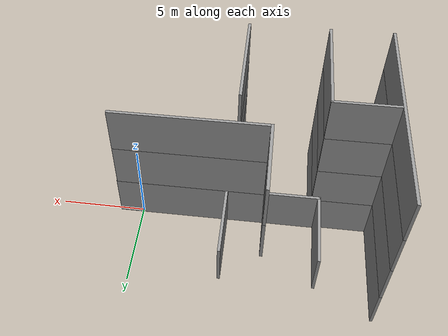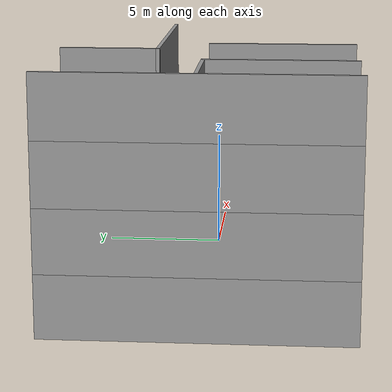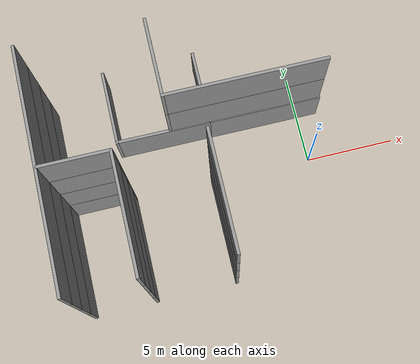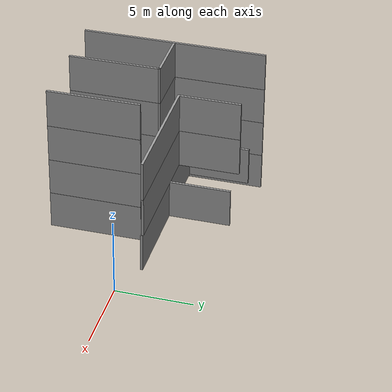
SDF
<sdf version="1.7">
 <world name="__default__">
  <model name="level4_floor">
   <link name="Wall_14">
    <pose>-5.03617 -2.92968 0 0 0 -1.5708</pose>
    <visual name="Wall_14_Visual">
     <pose>0 0 1.25 0 -0 0</pose>
     <geometry><box><size>6 0.15 2.5</size></box></geometry>
     <material>
      <script><uri>file://media/materials/scripts/gazebo.material</uri><name>Gazebo/Grey</name></script>
      <ambient>1 1 1 1</ambient>
      <shader type="pixel"/>
     </material>
     <meta><layer>0</layer></meta>
    </visual>
    <collision name="Wall_14_Collision">
     <pose>0 0 1.25 0 -0 0</pose>
     <geometry><box><size>6 0.15 2.5</size></box></geometry>
     <surface>
      <friction>
       <ode><mu>1</mu><mu2>1</mu2><fdir1>0 0 0</fdir1><slip1>0</slip1><slip2>0</slip2></ode>
       <torsional>
        <coefficient>1</coefficient>
        <patch_radius>0</patch_radius>
        <surface_radius>0</surface_radius>
        <use_patch_radius>1</use_patch_radius>
        <ode><slip>0</slip></ode>
       </torsional>
      </friction>
      <bounce><restitution_coefficient>0</restitution_coefficient><threshold>1e+06</threshold></bounce>
      <contact>
       <collide_without_contact>0</collide_without_contact>
       <collide_without_contact_bitmask>1</collide_without_contact_bitmask>
       <collide_bitmask>1</collide_bitmask>
       <ode>
        <soft_cfm>0</soft_cfm>
        <soft_erp>0.2</soft_erp>
        <kp>1e+13</kp>
        <kd>1</kd>
        <max_vel>0.01</max_vel>
        <min_depth>0</min_depth>
       </ode>
       <bullet>
        <split_impulse>1</split_impulse>
        <split_impulse_penetration_threshold>-0.01</split_impulse_penetration_threshold>
        <soft_cfm>0</soft_cfm>
        <soft_erp>0.2</soft_erp>
        <kp>1e+13</kp>
        <kd>1</kd>
       </bullet>
      </contact>
     </surface>
    </collision>
   </link>
   <link name="Wall_2">
    <pose>-12.925 0 0 0 0 -1.5708</pose>
    <visual name="Wall_2_Visual">
     <pose>0 0 1.25 0 -0 0</pose>
     <geometry><box><size>12 0.15 2.5</size></box></geometry>
     <material>
      <script><uri>file://media/materials/scripts/gazebo.material</uri><name>Gazebo/Grey</name></script>
      <ambient>1 1 1 1</ambient>
      <shader type="pixel"/>
     </material>
     <meta><layer>0</layer></meta>
    </visual>
    <collision name="Wall_2_Collision">
     <pose>0 0 1.25 0 -0 0</pose>
     <geometry><box><size>12 0.15 2.5</size></box></geometry>
     <surface>
      <friction>
       <ode><mu>1</mu><mu2>1</mu2><fdir1>0 0 0</fdir1><slip1>0</slip1><slip2>0</slip2></ode>
       <torsional>
        <coefficient>1</coefficient>
        <patch_radius>0</patch_radius>
        <surface_radius>0</surface_radius>
        <use_patch_radius>1</use_patch_radius>
        <ode><slip>0</slip></ode>
       </torsional>
      </friction>
      <bounce><restitution_coefficient>0</restitution_coefficient><threshold>1e+06</threshold></bounce>
      <contact>
       <collide_without_contact>0</collide_without_contact>
       <collide_without_contact_bitmask>1</collide_without_contact_bitmask>
       <collide_bitmask>1</collide_bitmask>
       <ode>
        <soft_cfm>0</soft_cfm>
        <soft_erp>0.2</soft_erp>
        <kp>1e+13</kp>
        <kd>1</kd>
        <max_vel>0.01</max_vel>
        <min_depth>0</min_depth>
       </ode>
       <bullet>
        <split_impulse>1</split_impulse>
        <split_impulse_penetration_threshold>-0.01</split_impulse_penetration_threshold>
        <soft_cfm>0</soft_cfm>
        <soft_erp>0.2</soft_erp>
        <kp>1e+13</kp>
        <kd>1</kd>
       </bullet>
      </contact>
     </surface>
    </collision>
   </link>
   <link name="Wall_26">
    <pose>-11.1664 -0.004708 0 0 -0 0</pose>
    <visual name="Wall_26_Visual">
     <pose>0 0 1.25 0 -0 0</pose>
     <geometry><box><size>3.5 0.15 2.5</size></box></geometry>
     <material>
      <script><uri>file://media/materials/scripts/gazebo.material</uri><name>Gazebo/Grey</name></script>
      <ambient>1 1 1 1</ambient>
      <shader type="pixel"/>
     </material>
     <meta><layer>0</layer></meta>
    </visual>
    <collision name="Wall_26_Collision">
     <pose>0 0 1.25 0 -0 0</pose>
     <geometry><box><size>3.5 0.15 2.5</size></box></geometry>
     <surface>
      <friction>
       <ode><mu>1</mu><mu2>1</mu2><fdir1>0 0 0</fdir1><slip1>0</slip1><slip2>0</slip2></ode>
       <torsional>
        <coefficient>1</coefficient>
        <patch_radius>0</patch_radius>
        <surface_radius>0</surface_radius>
        <use_patch_radius>1</use_patch_radius>
        <ode><slip>0</slip></ode>
       </torsional>
      </friction>
      <bounce><restitution_coefficient>0</restitution_coefficient><threshold>1e+06</threshold></bounce>
      <contact>
       <collide_without_contact>0</collide_without_contact>
       <collide_without_contact_bitmask>1</collide_without_contact_bitmask>
       <collide_bitmask>1</collide_bitmask>
       <ode>
        <soft_cfm>0</soft_cfm>
        <soft_erp>0.2</soft_erp>
        <kp>1e+13</kp>
        <kd>1</kd>
        <max_vel>0.01</max_vel>
        <min_depth>0</min_depth>
       </ode>
       <bullet>
        <split_impulse>1</split_impulse>
        <split_impulse_penetration_threshold>-0.01</split_impulse_penetration_threshold>
        <soft_cfm>0</soft_cfm>
        <soft_erp>0.2</soft_erp>
        <kp>1e+13</kp>
        <kd>1</kd>
       </bullet>
      </contact>
     </surface>
    </collision>
   </link>
   <link name="Wall_27">
    <pose>-9.49144 -2.92971 0 0 0 -1.5708</pose>
    <visual name="Wall_27_Visual">
     <pose>0 0 1.25 0 -0 0</pose>
     <geometry><box><size>6 0.15 2.5</size></box></geometry>
     <material>
      <script><uri>file://media/materials/scripts/gazebo.material</uri><name>Gazebo/Grey</name></script>
      <ambient>1 1 1 1</ambient>
      <shader type="pixel"/>
     </material>
     <meta><layer>0</layer></meta>
    </visual>
    <collision name="Wall_27_Collision">
     <pose>0 0 1.25 0 -0 0</pose>
     <geometry><box><size>6 0.15 2.5</size></box></geometry>
     <surface>
      <friction>
       <ode><mu>1</mu><mu2>1</mu2><fdir1>0 0 0</fdir1><slip1>0</slip1><slip2>0</slip2></ode>
       <torsional>
        <coefficient>1</coefficient>
        <patch_radius>0</patch_radius>
        <surface_radius>0</surface_radius>
        <use_patch_radius>1</use_patch_radius>
        <ode><slip>0</slip></ode>
       </torsional>
      </friction>
      <bounce><restitution_coefficient>0</restitution_coefficient><threshold>1e+06</threshold></bounce>
      <contact>
       <collide_without_contact>0</collide_without_contact>
       <collide_without_contact_bitmask>1</collide_without_contact_bitmask>
       <collide_bitmask>1</collide_bitmask>
       <ode>
        <soft_cfm>0</soft_cfm>
        <soft_erp>0.2</soft_erp>
        <kp>1e+13</kp>
        <kd>1</kd>
        <max_vel>0.01</max_vel>
        <min_depth>0</min_depth>
       </ode>
       <bullet>
        <split_impulse>1</split_impulse>
        <split_impulse_penetration_threshold>-0.01</split_impulse_penetration_threshold>
        <soft_cfm>0</soft_cfm>
        <soft_erp>0.2</soft_erp>
        <kp>1e+13</kp>
        <kd>1</kd>
       </bullet>
      </contact>
     </surface>
    </collision>
   </link>
   <link name="Wall_30">
    <pose>-12.925 0 2.5 0 0 -1.5708</pose>
    <visual name="Wall_30_Visual">
     <pose>0 0 1.25 0 -0 0</pose>
     <geometry><box><size>12 0.15 2.5</size></box></geometry>
     <material>
      <script><uri>file://media/materials/scripts/gazebo.material</uri><name>Gazebo/Grey</name></script>
      <ambient>1 1 1 1</ambient>
      <shader type="pixel"/>
     </material>
     <meta><layer>1</layer></meta>
    </visual>
    <collision name="Wall_30_Collision">
     <pose>0 0 1.25 0 -0 0</pose>
     <geometry><box><size>12 0.15 2.5</size></box></geometry>
     <surface>
      <friction>
       <ode><mu>1</mu><mu2>1</mu2><fdir1>0 0 0</fdir1><slip1>0</slip1><slip2>0</slip2></ode>
       <torsional>
        <coefficient>1</coefficient>
        <patch_radius>0</patch_radius>
        <surface_radius>0</surface_radius>
        <use_patch_radius>1</use_patch_radius>
        <ode><slip>0</slip></ode>
       </torsional>
      </friction>
      <bounce><restitution_coefficient>0</restitution_coefficient><threshold>1e+06</threshold></bounce>
      <contact>
       <collide_without_contact>0</collide_without_contact>
       <collide_without_contact_bitmask>1</collide_without_contact_bitmask>
       <collide_bitmask>1</collide_bitmask>
       <ode>
        <soft_cfm>0</soft_cfm>
        <soft_erp>0.2</soft_erp>
        <kp>1e+13</kp>
        <kd>1</kd>
        <max_vel>0.01</max_vel>
        <min_depth>0</min_depth>
       </ode>
       <bullet>
        <split_impulse>1</split_impulse>
        <split_impulse_penetration_threshold>-0.01</split_impulse_penetration_threshold>
        <soft_cfm>0</soft_cfm>
        <soft_erp>0.2</soft_erp>
        <kp>1e+13</kp>
        <kd>1</kd>
       </bullet>
      </contact>
     </surface>
    </collision>
   </link>
   <link name="Wall_34">
    <pose>-5.03617 -2.92968 2.5 0 0 -1.5708</pose>
    <visual name="Wall_34_Visual">
     <pose>0 0 1.25 0 -0 0</pose>
     <geometry><box><size>6 0.15 2.5</size></box></geometry>
     <material>
      <script><uri>file://media/materials/scripts/gazebo.material</uri><name>Gazebo/Grey</name></script>
      <ambient>1 1 1 1</ambient>
      <shader type="pixel"/>
     </material>
     <meta><layer>1</layer></meta>
    </visual>
    <collision name="Wall_34_Collision">
     <pose>0 0 1.25 0 -0 0</pose>
     <geometry><box><size>6 0.15 2.5</size></box></geometry>
     <surface>
      <friction>
       <ode><mu>1</mu><mu2>1</mu2><fdir1>0 0 0</fdir1><slip1>0</slip1><slip2>0</slip2></ode>
       <torsional>
        <coefficient>1</coefficient>
        <patch_radius>0</patch_radius>
        <surface_radius>0</surface_radius>
        <use_patch_radius>1</use_patch_radius>
        <ode><slip>0</slip></ode>
       </torsional>
      </friction>
      <bounce><restitution_coefficient>0</restitution_coefficient><threshold>1e+06</threshold></bounce>
      <contact>
       <collide_without_contact>0</collide_without_contact>
       <collide_without_contact_bitmask>1</collide_without_contact_bitmask>
       <collide_bitmask>1</collide_bitmask>
       <ode>
        <soft_cfm>0</soft_cfm>
        <soft_erp>0.2</soft_erp>
        <kp>1e+13</kp>
        <kd>1</kd>
        <max_vel>0.01</max_vel>
        <min_depth>0</min_depth>
       </ode>
       <bullet>
        <split_impulse>1</split_impulse>
        <split_impulse_penetration_threshold>-0.01</split_impulse_penetration_threshold>
        <soft_cfm>0</soft_cfm>
        <soft_erp>0.2</soft_erp>
        <kp>1e+13</kp>
        <kd>1</kd>
       </bullet>
      </contact>
     </surface>
    </collision>
   </link>
   <link name="Wall_40">
    <pose>-11.1664 -0.004708 2.5 0 -0 0</pose>
    <visual name="Wall_40_Visual">
     <pose>0 0 1.25 0 -0 0</pose>
     <geometry><box><size>3.5 0.15 2.5</size></box></geometry>
     <material>
      <script><uri>file://media/materials/scripts/gazebo.material</uri><name>Gazebo/Grey</name></script>
      <ambient>1 1 1 1</ambient>
      <shader type="pixel"/>
     </material>
     <meta><layer>1</layer></meta>
    </visual>
    <collision name="Wall_40_Collision">
     <pose>0 0 1.25 0 -0 0</pose>
     <geometry><box><size>3.5 0.15 2.5</size></box></geometry>
     <surface>
      <friction>
       <ode><mu>1</mu><mu2>1</mu2><fdir1>0 0 0</fdir1><slip1>0</slip1><slip2>0</slip2></ode>
       <torsional>
        <coefficient>1</coefficient>
        <patch_radius>0</patch_radius>
        <surface_radius>0</surface_radius>
        <use_patch_radius>1</use_patch_radius>
        <ode><slip>0</slip></ode>
       </torsional>
      </friction>
      <bounce><restitution_coefficient>0</restitution_coefficient><threshold>1e+06</threshold></bounce>
      <contact>
       <collide_without_contact>0</collide_without_contact>
       <collide_without_contact_bitmask>1</collide_without_contact_bitmask>
       <collide_bitmask>1</collide_bitmask>
       <ode>
        <soft_cfm>0</soft_cfm>
        <soft_erp>0.2</soft_erp>
        <kp>1e+13</kp>
        <kd>1</kd>
        <max_vel>0.01</max_vel>
        <min_depth>0</min_depth>
       </ode>
       <bullet>
        <split_impulse>1</split_impulse>
        <split_impulse_penetration_threshold>-0.01</split_impulse_penetration_threshold>
        <soft_cfm>0</soft_cfm>
        <soft_erp>0.2</soft_erp>
        <kp>1e+13</kp>
        <kd>1</kd>
       </bullet>
      </contact>
     </surface>
    </collision>
   </link>
   <link name="Wall_41">
    <pose>-9.49144 -2.92971 2.5 0 0 -1.5708</pose>
    <visual name="Wall_41_Visual">
     <pose>0 0 1.25 0 -0 0</pose>
     <geometry><box><size>6 0.15 2.5</size></box></geometry>
     <material>
      <script><uri>file://media/materials/scripts/gazebo.material</uri><name>Gazebo/Grey</name></script>
      <ambient>1 1 1 1</ambient>
      <shader type="pixel"/>
     </material>
     <meta><layer>1</layer></meta>
    </visual>
    <collision name="Wall_41_Collision">
     <pose>0 0 1.25 0 -0 0</pose>
     <geometry><box><size>6 0.15 2.5</size></box></geometry>
     <surface>
      <friction>
       <ode><mu>1</mu><mu2>1</mu2><fdir1>0 0 0</fdir1><slip1>0</slip1><slip2>0</slip2></ode>
       <torsional>
        <coefficient>1</coefficient>
        <patch_radius>0</patch_radius>
        <surface_radius>0</surface_radius>
        <use_patch_radius>1</use_patch_radius>
        <ode><slip>0</slip></ode>
       </torsional>
      </friction>
      <bounce><restitution_coefficient>0</restitution_coefficient><threshold>1e+06</threshold></bounce>
      <contact>
       <collide_without_contact>0</collide_without_contact>
       <collide_without_contact_bitmask>1</collide_without_contact_bitmask>
       <collide_bitmask>1</collide_bitmask>
       <ode>
        <soft_cfm>0</soft_cfm>
        <soft_erp>0.2</soft_erp>
        <kp>1e+13</kp>
        <kd>1</kd>
        <max_vel>0.01</max_vel>
        <min_depth>0</min_depth>
       </ode>
       <bullet>
        <split_impulse>1</split_impulse>
        <split_impulse_penetration_threshold>-0.01</split_impulse_penetration_threshold>
        <soft_cfm>0</soft_cfm>
        <soft_erp>0.2</soft_erp>
        <kp>1e+13</kp>
        <kd>1</kd>
       </bullet>
      </contact>
     </surface>
    </collision>
   </link>
   <link name="Wall_43">
    <pose>-12.925 0 5 0 0 -1.5708</pose>
    <visual name="Wall_43_Visual">
     <pose>0 0 1.25 0 -0 0</pose>
     <geometry><box><size>12 0.15 2.5</size></box></geometry>
     <material>
      <script><uri>file://media/materials/scripts/gazebo.material</uri><name>Gazebo/Grey</name></script>
      <ambient>1 1 1 1</ambient>
      <shader type="pixel"/>
     </material>
     <meta><layer>2</layer></meta>
    </visual>
    <collision name="Wall_43_Collision">
     <pose>0 0 1.25 0 -0 0</pose>
     <geometry><box><size>12 0.15 2.5</size></box></geometry>
     <surface>
      <friction>
       <ode><mu>1</mu><mu2>1</mu2><fdir1>0 0 0</fdir1><slip1>0</slip1><slip2>0</slip2></ode>
       <torsional>
        <coefficient>1</coefficient>
        <patch_radius>0</patch_radius>
        <surface_radius>0</surface_radius>
        <use_patch_radius>1</use_patch_radius>
        <ode><slip>0</slip></ode>
       </torsional>
      </friction>
      <bounce><restitution_coefficient>0</restitution_coefficient><threshold>1e+06</threshold></bounce>
      <contact>
       <collide_without_contact>0</collide_without_contact>
       <collide_without_contact_bitmask>1</collide_without_contact_bitmask>
       <collide_bitmask>1</collide_bitmask>
       <ode>
        <soft_cfm>0</soft_cfm>
        <soft_erp>0.2</soft_erp>
        <kp>1e+13</kp>
        <kd>1</kd>
        <max_vel>0.01</max_vel>
        <min_depth>0</min_depth>
       </ode>
       <bullet>
        <split_impulse>1</split_impulse>
        <split_impulse_penetration_threshold>-0.01</split_impulse_penetration_threshold>
        <soft_cfm>0</soft_cfm>
        <soft_erp>0.2</soft_erp>
        <kp>1e+13</kp>
        <kd>1</kd>
       </bullet>
      </contact>
     </surface>
    </collision>
   </link>
   <link name="Wall_47">
    <pose>-5.03617 -2.92968 5 0 0 -1.5708</pose>
    <visual name="Wall_47_Visual">
     <pose>0 0 1.25 0 -0 0</pose>
     <geometry><box><size>6 0.15 2.5</size></box></geometry>
     <material>
      <script><uri>file://media/materials/scripts/gazebo.material</uri><name>Gazebo/Grey</name></script>
      <ambient>1 1 1 1</ambient>
      <shader type="pixel"/>
     </material>
     <meta><layer>2</layer></meta>
    </visual>
    <collision name="Wall_47_Collision">
     <pose>0 0 1.25 0 -0 0</pose>
     <geometry><box><size>6 0.15 2.5</size></box></geometry>
     <surface>
      <friction>
       <ode><mu>1</mu><mu2>1</mu2><fdir1>0 0 0</fdir1><slip1>0</slip1><slip2>0</slip2></ode>
       <torsional>
        <coefficient>1</coefficient>
        <patch_radius>0</patch_radius>
        <surface_radius>0</surface_radius>
        <use_patch_radius>1</use_patch_radius>
        <ode><slip>0</slip></ode>
       </torsional>
      </friction>
      <bounce><restitution_coefficient>0</restitution_coefficient><threshold>1e+06</threshold></bounce>
      <contact>
       <collide_without_contact>0</collide_without_contact>
       <collide_without_contact_bitmask>1</collide_without_contact_bitmask>
       <collide_bitmask>1</collide_bitmask>
       <ode>
        <soft_cfm>0</soft_cfm>
        <soft_erp>0.2</soft_erp>
        <kp>1e+13</kp>
        <kd>1</kd>
        <max_vel>0.01</max_vel>
        <min_depth>0</min_depth>
       </ode>
       <bullet>
        <split_impulse>1</split_impulse>
        <split_impulse_penetration_threshold>-0.01</split_impulse_penetration_threshold>
        <soft_cfm>0</soft_cfm>
        <soft_erp>0.2</soft_erp>
        <kp>1e+13</kp>
        <kd>1</kd>
       </bullet>
      </contact>
     </surface>
    </collision>
   </link>
   <link name="Wall_53">
    <pose>-11.1664 -0.004708 5 0 -0 0</pose>
    <visual name="Wall_53_Visual">
     <pose>0 0 1.25 0 -0 0</pose>
     <geometry><box><size>3.5 0.15 2.5</size></box></geometry>
     <material>
      <script><uri>file://media/materials/scripts/gazebo.material</uri><name>Gazebo/Grey</name></script>
      <ambient>1 1 1 1</ambient>
      <shader type="pixel"/>
     </material>
     <meta><layer>2</layer></meta>
    </visual>
    <collision name="Wall_53_Collision">
     <pose>0 0 1.25 0 -0 0</pose>
     <geometry><box><size>3.5 0.15 2.5</size></box></geometry>
     <surface>
      <friction>
       <ode><mu>1</mu><mu2>1</mu2><fdir1>0 0 0</fdir1><slip1>0</slip1><slip2>0</slip2></ode>
       <torsional>
        <coefficient>1</coefficient>
        <patch_radius>0</patch_radius>
        <surface_radius>0</surface_radius>
        <use_patch_radius>1</use_patch_radius>
        <ode><slip>0</slip></ode>
       </torsional>
      </friction>
      <bounce><restitution_coefficient>0</restitution_coefficient><threshold>1e+06</threshold></bounce>
      <contact>
       <collide_without_contact>0</collide_without_contact>
       <collide_without_contact_bitmask>1</collide_without_contact_bitmask>
       <collide_bitmask>1</collide_bitmask>
       <ode>
        <soft_cfm>0</soft_cfm>
        <soft_erp>0.2</soft_erp>
        <kp>1e+13</kp>
        <kd>1</kd>
        <max_vel>0.01</max_vel>
        <min_depth>0</min_depth>
       </ode>
       <bullet>
        <split_impulse>1</split_impulse>
        <split_impulse_penetration_threshold>-0.01</split_impulse_penetration_threshold>
        <soft_cfm>0</soft_cfm>
        <soft_erp>0.2</soft_erp>
        <kp>1e+13</kp>
        <kd>1</kd>
       </bullet>
      </contact>
     </surface>
    </collision>
   </link>
   <link name="Wall_54">
    <pose>-9.49144 -2.92971 5 0 0 -1.5708</pose>
    <visual name="Wall_54_Visual">
     <pose>0 0 1.25 0 -0 0</pose>
     <geometry><box><size>6 0.15 2.5</size></box></geometry>
     <material>
      <script><uri>file://media/materials/scripts/gazebo.material</uri><name>Gazebo/Grey</name></script>
      <ambient>1 1 1 1</ambient>
      <shader type="pixel"/>
     </material>
     <meta><layer>2</layer></meta>
    </visual>
    <collision name="Wall_54_Collision">
     <pose>0 0 1.25 0 -0 0</pose>
     <geometry><box><size>6 0.15 2.5</size></box></geometry>
     <surface>
      <friction>
       <ode><mu>1</mu><mu2>1</mu2><fdir1>0 0 0</fdir1><slip1>0</slip1><slip2>0</slip2></ode>
       <torsional>
        <coefficient>1</coefficient>
        <patch_radius>0</patch_radius>
        <surface_radius>0</surface_radius>
        <use_patch_radius>1</use_patch_radius>
        <ode><slip>0</slip></ode>
       </torsional>
      </friction>
      <bounce><restitution_coefficient>0</restitution_coefficient><threshold>1e+06</threshold></bounce>
      <contact>
       <collide_without_contact>0</collide_without_contact>
       <collide_without_contact_bitmask>1</collide_without_contact_bitmask>
       <collide_bitmask>1</collide_bitmask>
       <ode>
        <soft_cfm>0</soft_cfm>
        <soft_erp>0.2</soft_erp>
        <kp>1e+13</kp>
        <kd>1</kd>
        <max_vel>0.01</max_vel>
        <min_depth>0</min_depth>
       </ode>
       <bullet>
        <split_impulse>1</split_impulse>
        <split_impulse_penetration_threshold>-0.01</split_impulse_penetration_threshold>
        <soft_cfm>0</soft_cfm>
        <soft_erp>0.2</soft_erp>
        <kp>1e+13</kp>
        <kd>1</kd>
       </bullet>
      </contact>
     </surface>
    </collision>
   </link>
   <link name="Wall_62">
    <pose>-2.78219 1.99936 5 0 -0 3.14159</pose>
    <visual name="Wall_62_Visual">
     <pose>0 0 1.25 0 -0 0</pose>
     <geometry><box><size>8 0.15 2.5</size></box></geometry>
     <material>
      <script><uri>file://media/materials/scripts/gazebo.material</uri><name>Gazebo/Grey</name></script>
      <ambient>1 1 1 1</ambient>
      <shader type="pixel"/>
     </material>
     <meta><layer>2</layer></meta>
    </visual>
    <collision name="Wall_62_Collision">
     <pose>0 0 1.25 0 -0 0</pose>
     <geometry><box><size>8 0.15 2.5</size></box></geometry>
     <surface>
      <friction>
       <ode><mu>1</mu><mu2>1</mu2><fdir1>0 0 0</fdir1><slip1>0</slip1><slip2>0</slip2></ode>
       <torsional>
        <coefficient>1</coefficient>
        <patch_radius>0</patch_radius>
        <surface_radius>0</surface_radius>
        <use_patch_radius>1</use_patch_radius>
        <ode><slip>0</slip></ode>
       </torsional>
      </friction>
      <bounce><restitution_coefficient>0</restitution_coefficient><threshold>1e+06</threshold></bounce>
      <contact>
       <collide_without_contact>0</collide_without_contact>
       <collide_without_contact_bitmask>1</collide_without_contact_bitmask>
       <collide_bitmask>1</collide_bitmask>
       <ode>
        <soft_cfm>0</soft_cfm>
        <soft_erp>0.2</soft_erp>
        <kp>1e+13</kp>
        <kd>1</kd>
        <max_vel>0.01</max_vel>
        <min_depth>0</min_depth>
       </ode>
       <bullet>
        <split_impulse>1</split_impulse>
        <split_impulse_penetration_threshold>-0.01</split_impulse_penetration_threshold>
        <soft_cfm>0</soft_cfm>
        <soft_erp>0.2</soft_erp>
        <kp>1e+13</kp>
        <kd>1</kd>
       </bullet>
      </contact>
     </surface>
    </collision>
   </link>
   <link name="Wall_63">
    <pose>-6.70719 3.92436 5 0 -0 1.5708</pose>
    <visual name="Wall_63_Visual">
     <pose>0 0 1.25 0 -0 0</pose>
     <geometry><box><size>4 0.15 2.5</size></box></geometry>
     <material>
      <script><uri>file://media/materials/scripts/gazebo.material</uri><name>Gazebo/Grey</name></script>
      <ambient>1 1 1 1</ambient>
      <shader type="pixel"/>
     </material>
     <meta><layer>2</layer></meta>
    </visual>
    <collision name="Wall_63_Collision">
     <pose>0 0 1.25 0 -0 0</pose>
     <geometry><box><size>4 0.15 2.5</size></box></geometry>
     <surface>
      <friction>
       <ode><mu>1</mu><mu2>1</mu2><fdir1>0 0 0</fdir1><slip1>0</slip1><slip2>0</slip2></ode>
       <torsional>
        <coefficient>1</coefficient>
        <patch_radius>0</patch_radius>
        <surface_radius>0</surface_radius>
        <use_patch_radius>1</use_patch_radius>
        <ode><slip>0</slip></ode>
       </torsional>
      </friction>
      <bounce><restitution_coefficient>0</restitution_coefficient><threshold>1e+06</threshold></bounce>
      <contact>
       <collide_without_contact>0</collide_without_contact>
       <collide_without_contact_bitmask>1</collide_without_contact_bitmask>
       <collide_bitmask>1</collide_bitmask>
       <ode>
        <soft_cfm>0</soft_cfm>
        <soft_erp>0.2</soft_erp>
        <kp>1e+13</kp>
        <kd>1</kd>
        <max_vel>0.01</max_vel>
        <min_depth>0</min_depth>
       </ode>
       <bullet>
        <split_impulse>1</split_impulse>
        <split_impulse_penetration_threshold>-0.01</split_impulse_penetration_threshold>
        <soft_cfm>0</soft_cfm>
        <soft_erp>0.2</soft_erp>
        <kp>1e+13</kp>
        <kd>1</kd>
       </bullet>
      </contact>
     </surface>
    </collision>
   </link>
   <link name="Wall_66">
    <pose>-12.925 0 7.5 0 0 -1.5708</pose>
    <visual name="Wall_66_Visual">
     <pose>0 0 1.25 0 -0 0</pose>
     <geometry><box><size>12 0.15 2.5</size></box></geometry>
     <material>
      <script><uri>file://media/materials/scripts/gazebo.material</uri><name>Gazebo/Grey</name></script>
      <ambient>1 1 1 1</ambient>
      <shader type="pixel"/>
     </material>
     <meta><layer>3</layer></meta>
    </visual>
    <collision name="Wall_66_Collision">
     <pose>0 0 1.25 0 -0 0</pose>
     <geometry><box><size>12 0.15 2.5</size></box></geometry>
     <surface>
      <friction>
       <ode><mu>1</mu><mu2>1</mu2><fdir1>0 0 0</fdir1><slip1>0</slip1><slip2>0</slip2></ode>
       <torsional>
        <coefficient>1</coefficient>
        <patch_radius>0</patch_radius>
        <surface_radius>0</surface_radius>
        <use_patch_radius>1</use_patch_radius>
        <ode><slip>0</slip></ode>
       </torsional>
      </friction>
      <bounce><restitution_coefficient>0</restitution_coefficient><threshold>1e+06</threshold></bounce>
      <contact>
       <collide_without_contact>0</collide_without_contact>
       <collide_without_contact_bitmask>1</collide_without_contact_bitmask>
       <collide_bitmask>1</collide_bitmask>
       <ode>
        <soft_cfm>0</soft_cfm>
        <soft_erp>0.2</soft_erp>
        <kp>1e+13</kp>
        <kd>1</kd>
        <max_vel>0.01</max_vel>
        <min_depth>0</min_depth>
       </ode>
       <bullet>
        <split_impulse>1</split_impulse>
        <split_impulse_penetration_threshold>-0.01</split_impulse_penetration_threshold>
        <soft_cfm>0</soft_cfm>
        <soft_erp>0.2</soft_erp>
        <kp>1e+13</kp>
        <kd>1</kd>
       </bullet>
      </contact>
     </surface>
    </collision>
   </link>
   <link name="Wall_70">
    <pose>-5.03617 -2.92968 7.5 0 0 -1.5708</pose>
    <visual name="Wall_70_Visual">
     <pose>0 0 1.25 0 -0 0</pose>
     <geometry><box><size>6 0.15 2.5</size></box></geometry>
     <material>
      <script><uri>file://media/materials/scripts/gazebo.material</uri><name>Gazebo/Grey</name></script>
      <ambient>1 1 1 1</ambient>
      <shader type="pixel"/>
     </material>
     <meta><layer>3</layer></meta>
    </visual>
    <collision name="Wall_70_Collision">
     <pose>0 0 1.25 0 -0 0</pose>
     <geometry><box><size>6 0.15 2.5</size></box></geometry>
     <surface>
      <friction>
       <ode><mu>1</mu><mu2>1</mu2><fdir1>0 0 0</fdir1><slip1>0</slip1><slip2>0</slip2></ode>
       <torsional>
        <coefficient>1</coefficient>
        <patch_radius>0</patch_radius>
        <surface_radius>0</surface_radius>
        <use_patch_radius>1</use_patch_radius>
        <ode><slip>0</slip></ode>
       </torsional>
      </friction>
      <bounce><restitution_coefficient>0</restitution_coefficient><threshold>1e+06</threshold></bounce>
      <contact>
       <collide_without_contact>0</collide_without_contact>
       <collide_without_contact_bitmask>1</collide_without_contact_bitmask>
       <collide_bitmask>1</collide_bitmask>
       <ode>
        <soft_cfm>0</soft_cfm>
        <soft_erp>0.2</soft_erp>
        <kp>1e+13</kp>
        <kd>1</kd>
        <max_vel>0.01</max_vel>
        <min_depth>0</min_depth>
       </ode>
       <bullet>
        <split_impulse>1</split_impulse>
        <split_impulse_penetration_threshold>-0.01</split_impulse_penetration_threshold>
        <soft_cfm>0</soft_cfm>
        <soft_erp>0.2</soft_erp>
        <kp>1e+13</kp>
        <kd>1</kd>
       </bullet>
      </contact>
     </surface>
    </collision>
   </link>
   <link name="Wall_76">
    <pose>-11.1664 -0.004708 7.5 0 -0 0</pose>
    <visual name="Wall_76_Visual">
     <pose>0 0 1.25 0 -0 0</pose>
     <geometry><box><size>3.5 0.15 2.5</size></box></geometry>
     <material>
      <script><uri>file://media/materials/scripts/gazebo.material</uri><name>Gazebo/Grey</name></script>
      <ambient>1 1 1 1</ambient>
      <shader type="pixel"/>
     </material>
     <meta><layer>3</layer></meta>
    </visual>
    <collision name="Wall_76_Collision">
     <pose>0 0 1.25 0 -0 0</pose>
     <geometry><box><size>3.5 0.15 2.5</size></box></geometry>
     <surface>
      <friction>
       <ode><mu>1</mu><mu2>1</mu2><fdir1>0 0 0</fdir1><slip1>0</slip1><slip2>0</slip2></ode>
       <torsional>
        <coefficient>1</coefficient>
        <patch_radius>0</patch_radius>
        <surface_radius>0</surface_radius>
        <use_patch_radius>1</use_patch_radius>
        <ode><slip>0</slip></ode>
       </torsional>
      </friction>
      <bounce><restitution_coefficient>0</restitution_coefficient><threshold>1e+06</threshold></bounce>
      <contact>
       <collide_without_contact>0</collide_without_contact>
       <collide_without_contact_bitmask>1</collide_without_contact_bitmask>
       <collide_bitmask>1</collide_bitmask>
       <ode>
        <soft_cfm>0</soft_cfm>
        <soft_erp>0.2</soft_erp>
        <kp>1e+13</kp>
        <kd>1</kd>
        <max_vel>0.01</max_vel>
        <min_depth>0</min_depth>
       </ode>
       <bullet>
        <split_impulse>1</split_impulse>
        <split_impulse_penetration_threshold>-0.01</split_impulse_penetration_threshold>
        <soft_cfm>0</soft_cfm>
        <soft_erp>0.2</soft_erp>
        <kp>1e+13</kp>
        <kd>1</kd>
       </bullet>
      </contact>
     </surface>
    </collision>
   </link>
   <link name="Wall_77">
    <pose>-9.49144 -2.92971 7.5 0 0 -1.5708</pose>
    <visual name="Wall_77_Visual">
     <pose>0 0 1.25 0 -0 0</pose>
     <geometry><box><size>6 0.15 2.5</size></box></geometry>
     <material>
      <script><uri>file://media/materials/scripts/gazebo.material</uri><name>Gazebo/Grey</name></script>
      <ambient>1 1 1 1</ambient>
      <shader type="pixel"/>
     </material>
     <meta><layer>3</layer></meta>
    </visual>
    <collision name="Wall_77_Collision">
     <pose>0 0 1.25 0 -0 0</pose>
     <geometry><box><size>6 0.15 2.5</size></box></geometry>
     <surface>
      <friction>
       <ode><mu>1</mu><mu2>1</mu2><fdir1>0 0 0</fdir1><slip1>0</slip1><slip2>0</slip2></ode>
       <torsional>
        <coefficient>1</coefficient>
        <patch_radius>0</patch_radius>
        <surface_radius>0</surface_radius>
        <use_patch_radius>1</use_patch_radius>
        <ode><slip>0</slip></ode>
       </torsional>
      </friction>
      <bounce><restitution_coefficient>0</restitution_coefficient><threshold>1e+06</threshold></bounce>
      <contact>
       <collide_without_contact>0</collide_without_contact>
       <collide_without_contact_bitmask>1</collide_without_contact_bitmask>
       <collide_bitmask>1</collide_bitmask>
       <ode>
        <soft_cfm>0</soft_cfm>
        <soft_erp>0.2</soft_erp>
        <kp>1e+13</kp>
        <kd>1</kd>
        <max_vel>0.01</max_vel>
        <min_depth>0</min_depth>
       </ode>
       <bullet>
        <split_impulse>1</split_impulse>
        <split_impulse_penetration_threshold>-0.01</split_impulse_penetration_threshold>
        <soft_cfm>0</soft_cfm>
        <soft_erp>0.2</soft_erp>
        <kp>1e+13</kp>
        <kd>1</kd>
       </bullet>
      </contact>
     </surface>
    </collision>
   </link>
   <link name="Wall_81">
    <pose>-2.78219 1.99936 7.5 0 -0 3.14159</pose>
    <visual name="Wall_81_Visual">
     <pose>0 0 1.25 0 -0 0</pose>
     <geometry><box><size>8 0.15 2.5</size></box></geometry>
     <material>
      <script><uri>file://media/materials/scripts/gazebo.material</uri><name>Gazebo/Grey</name></script>
      <ambient>1 1 1 1</ambient>
      <shader type="pixel"/>
     </material>
     <meta><layer>3</layer></meta>
    </visual>
    <collision name="Wall_81_Collision">
     <pose>0 0 1.25 0 -0 0</pose>
     <geometry><box><size>8 0.15 2.5</size></box></geometry>
     <surface>
      <friction>
       <ode><mu>1</mu><mu2>1</mu2><fdir1>0 0 0</fdir1><slip1>0</slip1><slip2>0</slip2></ode>
       <torsional>
        <coefficient>1</coefficient>
        <patch_radius>0</patch_radius>
        <surface_radius>0</surface_radius>
        <use_patch_radius>1</use_patch_radius>
        <ode><slip>0</slip></ode>
       </torsional>
      </friction>
      <bounce><restitution_coefficient>0</restitution_coefficient><threshold>1e+06</threshold></bounce>
      <contact>
       <collide_without_contact>0</collide_without_contact>
       <collide_without_contact_bitmask>1</collide_without_contact_bitmask>
       <collide_bitmask>1</collide_bitmask>
       <ode>
        <soft_cfm>0</soft_cfm>
        <soft_erp>0.2</soft_erp>
        <kp>1e+13</kp>
        <kd>1</kd>
        <max_vel>0.01</max_vel>
        <min_depth>0</min_depth>
       </ode>
       <bullet>
        <split_impulse>1</split_impulse>
        <split_impulse_penetration_threshold>-0.01</split_impulse_penetration_threshold>
        <soft_cfm>0</soft_cfm>
        <soft_erp>0.2</soft_erp>
        <kp>1e+13</kp>
        <kd>1</kd>
       </bullet>
      </contact>
     </surface>
    </collision>
   </link>
   <link name="Wall_82">
    <pose>-6.70719 3.92436 7.5 0 -0 1.5708</pose>
    <visual name="Wall_82_Visual">
     <pose>0 0 1.25 0 -0 0</pose>
     <geometry><box><size>4 0.15 2.5</size></box></geometry>
     <material>
      <script><uri>file://media/materials/scripts/gazebo.material</uri><name>Gazebo/Grey</name></script>
      <ambient>1 1 1 1</ambient>
      <shader type="pixel"/>
     </material>
     <meta><layer>3</layer></meta>
    </visual>
    <collision name="Wall_82_Collision">
     <pose>0 0 1.25 0 -0 0</pose>
     <geometry><box><size>4 0.15 2.5</size></box></geometry>
     <surface>
      <friction>
       <ode><mu>1</mu><mu2>1</mu2><fdir1>0 0 0</fdir1><slip1>0</slip1><slip2>0</slip2></ode>
       <torsional>
        <coefficient>1</coefficient>
        <patch_radius>0</patch_radius>
        <surface_radius>0</surface_radius>
        <use_patch_radius>1</use_patch_radius>
        <ode><slip>0</slip></ode>
       </torsional>
      </friction>
      <bounce><restitution_coefficient>0</restitution_coefficient><threshold>1e+06</threshold></bounce>
      <contact>
       <collide_without_contact>0</collide_without_contact>
       <collide_without_contact_bitmask>1</collide_without_contact_bitmask>
       <collide_bitmask>1</collide_bitmask>
       <ode>
        <soft_cfm>0</soft_cfm>
        <soft_erp>0.2</soft_erp>
        <kp>1e+13</kp>
        <kd>1</kd>
        <max_vel>0.01</max_vel>
        <min_depth>0</min_depth>
       </ode>
       <bullet>
        <split_impulse>1</split_impulse>
        <split_impulse_penetration_threshold>-0.01</split_impulse_penetration_threshold>
        <soft_cfm>0</soft_cfm>
        <soft_erp>0.2</soft_erp>
        <kp>1e+13</kp>
        <kd>1</kd>
       </bullet>
      </contact>
     </surface>
    </collision>
   </link>
   <link name="Wall_88">
    <pose>-1.74029 1.95033 2.5 0 -0 3.14159</pose>
    <visual name="Wall_88_Visual">
     <pose>0 0 1.25 0 -0 0</pose>
     <geometry><box><size>6 0.15 2.5</size></box></geometry>
     <material>
      <script><uri>file://media/materials/scripts/gazebo.material</uri><name>Gazebo/Grey</name></script>
      <ambient>1 1 1 1</ambient>
      <shader type="pixel"/>
     </material>
     <meta><layer>1</layer></meta>
    </visual>
    <collision name="Wall_88_Collision">
     <pose>0 0 1.25 0 -0 0</pose>
     <geometry><box><size>6 0.15 2.5</size></box></geometry>
     <surface>
      <friction>
       <ode><mu>1</mu><mu2>1</mu2><fdir1>0 0 0</fdir1><slip1>0</slip1><slip2>0</slip2></ode>
       <torsional>
        <coefficient>1</coefficient>
        <patch_radius>0</patch_radius>
        <surface_radius>0</surface_radius>
        <use_patch_radius>1</use_patch_radius>
        <ode><slip>0</slip></ode>
       </torsional>
      </friction>
      <bounce><restitution_coefficient>0</restitution_coefficient><threshold>1e+06</threshold></bounce>
      <contact>
       <collide_without_contact>0</collide_without_contact>
       <collide_without_contact_bitmask>1</collide_without_contact_bitmask>
       <collide_bitmask>1</collide_bitmask>
       <ode>
        <soft_cfm>0</soft_cfm>
        <soft_erp>0.2</soft_erp>
        <kp>1e+13</kp>
        <kd>1</kd>
        <max_vel>0.01</max_vel>
        <min_depth>0</min_depth>
       </ode>
       <bullet>
        <split_impulse>1</split_impulse>
        <split_impulse_penetration_threshold>-0.01</split_impulse_penetration_threshold>
        <soft_cfm>0</soft_cfm>
        <soft_erp>0.2</soft_erp>
        <kp>1e+13</kp>
        <kd>1</kd>
       </bullet>
      </contact>
     </surface>
    </collision>
   </link>
   <link name="Wall_89">
    <pose>-4.66529 3.87533 2.5 0 -0 1.5708</pose>
    <visual name="Wall_89_Visual">
     <pose>0 0 1.25 0 -0 0</pose>
     <geometry><box><size>4 0.15 2.5</size></box></geometry>
     <material>
      <script><uri>file://media/materials/scripts/gazebo.material</uri><name>Gazebo/Grey</name></script>
      <ambient>1 1 1 1</ambient>
      <shader type="pixel"/>
     </material>
     <meta><layer>1</layer></meta>
    </visual>
    <collision name="Wall_89_Collision">
     <pose>0 0 1.25 0 -0 0</pose>
     <geometry><box><size>4 0.15 2.5</size></box></geometry>
     <surface>
      <friction>
       <ode><mu>1</mu><mu2>1</mu2><fdir1>0 0 0</fdir1><slip1>0</slip1><slip2>0</slip2></ode>
       <torsional>
        <coefficient>1</coefficient>
        <patch_radius>0</patch_radius>
        <surface_radius>0</surface_radius>
        <use_patch_radius>1</use_patch_radius>
        <ode><slip>0</slip></ode>
       </torsional>
      </friction>
      <bounce><restitution_coefficient>0</restitution_coefficient><threshold>1e+06</threshold></bounce>
      <contact>
       <collide_without_contact>0</collide_without_contact>
       <collide_without_contact_bitmask>1</collide_without_contact_bitmask>
       <collide_bitmask>1</collide_bitmask>
       <ode>
        <soft_cfm>0</soft_cfm>
        <soft_erp>0.2</soft_erp>
        <kp>1e+13</kp>
        <kd>1</kd>
        <max_vel>0.01</max_vel>
        <min_depth>0</min_depth>
       </ode>
       <bullet>
        <split_impulse>1</split_impulse>
        <split_impulse_penetration_threshold>-0.01</split_impulse_penetration_threshold>
        <soft_cfm>0</soft_cfm>
        <soft_erp>0.2</soft_erp>
        <kp>1e+13</kp>
        <kd>1</kd>
       </bullet>
      </contact>
     </surface>
    </collision>
   </link>
   <link name="Wall_91">
    <pose>-7.09028 1.95033 2.5 0 -0 3.14159</pose>
    <visual name="Wall_91_Visual">
     <pose>0 0 1.25 0 -0 0</pose>
     <geometry><box><size>5 0.15 2.5</size></box></geometry>
     <material>
      <script><uri>file://media/materials/scripts/gazebo.material</uri><name>Gazebo/Grey</name></script>
      <ambient>1 1 1 1</ambient>
      <shader type="pixel"/>
     </material>
     <meta><layer>1</layer></meta>
    </visual>
    <collision name="Wall_91_Collision">
     <pose>0 0 1.25 0 -0 0</pose>
     <geometry><box><size>5 0.15 2.5</size></box></geometry>
     <surface>
      <friction>
       <ode><mu>1</mu><mu2>1</mu2><fdir1>0 0 0</fdir1><slip1>0</slip1><slip2>0</slip2></ode>
       <torsional>
        <coefficient>1</coefficient>
        <patch_radius>0</patch_radius>
        <surface_radius>0</surface_radius>
        <use_patch_radius>1</use_patch_radius>
        <ode><slip>0</slip></ode>
       </torsional>
      </friction>
      <bounce><restitution_coefficient>0</restitution_coefficient><threshold>1e+06</threshold></bounce>
      <contact>
       <collide_without_contact>0</collide_without_contact>
       <collide_without_contact_bitmask>1</collide_without_contact_bitmask>
       <collide_bitmask>1</collide_bitmask>
       <ode>
        <soft_cfm>0</soft_cfm>
        <soft_erp>0.2</soft_erp>
        <kp>1e+13</kp>
        <kd>1</kd>
        <max_vel>0.01</max_vel>
        <min_depth>0</min_depth>
       </ode>
       <bullet>
        <split_impulse>1</split_impulse>
        <split_impulse_penetration_threshold>-0.01</split_impulse_penetration_threshold>
        <soft_cfm>0</soft_cfm>
        <soft_erp>0.2</soft_erp>
        <kp>1e+13</kp>
        <kd>1</kd>
       </bullet>
      </contact>
     </surface>
    </collision>
   </link>
   <link name="Wall_92">
    <pose>-9.51529 3.87533 2.5 0 -0 1.5708</pose>
    <visual name="Wall_92_Visual">
     <pose>0 0 1.25 0 -0 0</pose>
     <geometry><box><size>4 0.15 2.5</size></box></geometry>
     <material>
      <script><uri>file://media/materials/scripts/gazebo.material</uri><name>Gazebo/Grey</name></script>
      <ambient>1 1 1 1</ambient>
      <shader type="pixel"/>
     </material>
     <meta><layer>1</layer></meta>
    </visual>
    <collision name="Wall_92_Collision">
     <pose>0 0 1.25 0 -0 0</pose>
     <geometry><box><size>4 0.15 2.5</size></box></geometry>
     <surface>
      <friction>
       <ode><mu>1</mu><mu2>1</mu2><fdir1>0 0 0</fdir1><slip1>0</slip1><slip2>0</slip2></ode>
       <torsional>
        <coefficient>1</coefficient>
        <patch_radius>0</patch_radius>
        <surface_radius>0</surface_radius>
        <use_patch_radius>1</use_patch_radius>
        <ode><slip>0</slip></ode>
       </torsional>
      </friction>
      <bounce><restitution_coefficient>0</restitution_coefficient><threshold>1e+06</threshold></bounce>
      <contact>
       <collide_without_contact>0</collide_without_contact>
       <collide_without_contact_bitmask>1</collide_without_contact_bitmask>
       <collide_bitmask>1</collide_bitmask>
       <ode>
        <soft_cfm>0</soft_cfm>
        <soft_erp>0.2</soft_erp>
        <kp>1e+13</kp>
        <kd>1</kd>
        <max_vel>0.01</max_vel>
        <min_depth>0</min_depth>
       </ode>
       <bullet>
        <split_impulse>1</split_impulse>
        <split_impulse_penetration_threshold>-0.01</split_impulse_penetration_threshold>
        <soft_cfm>0</soft_cfm>
        <soft_erp>0.2</soft_erp>
        <kp>1e+13</kp>
        <kd>1</kd>
       </bullet>
      </contact>
     </surface>
    </collision>
   </link>
   <static>1</static>
   <pose>-0.582124 0 0 0 -0 0</pose>
  </model>
 </world>
</sdf>
